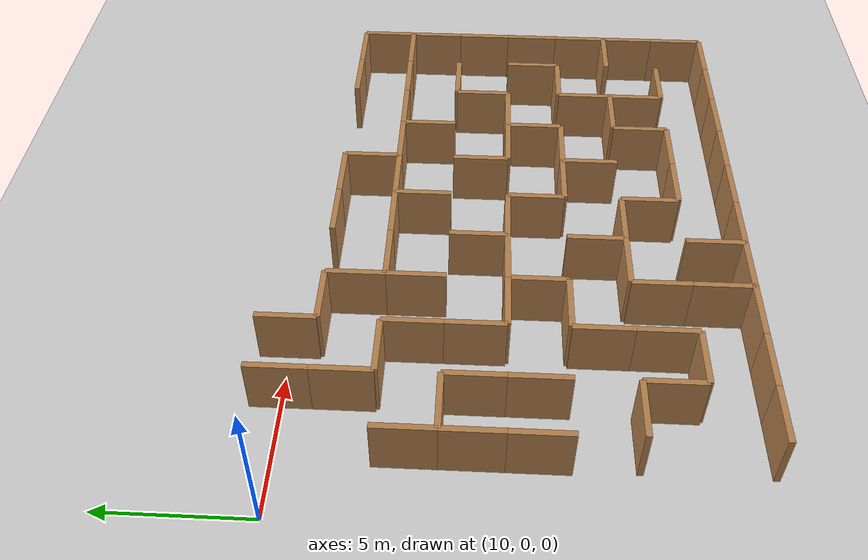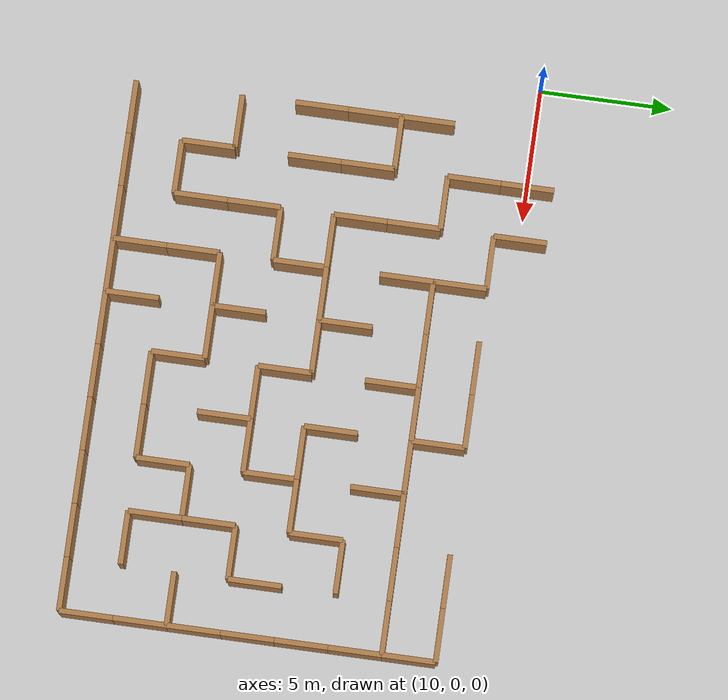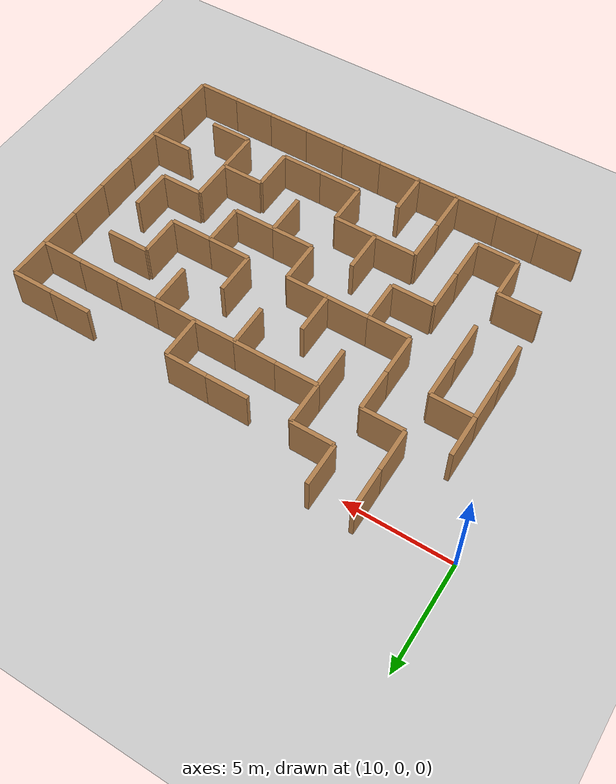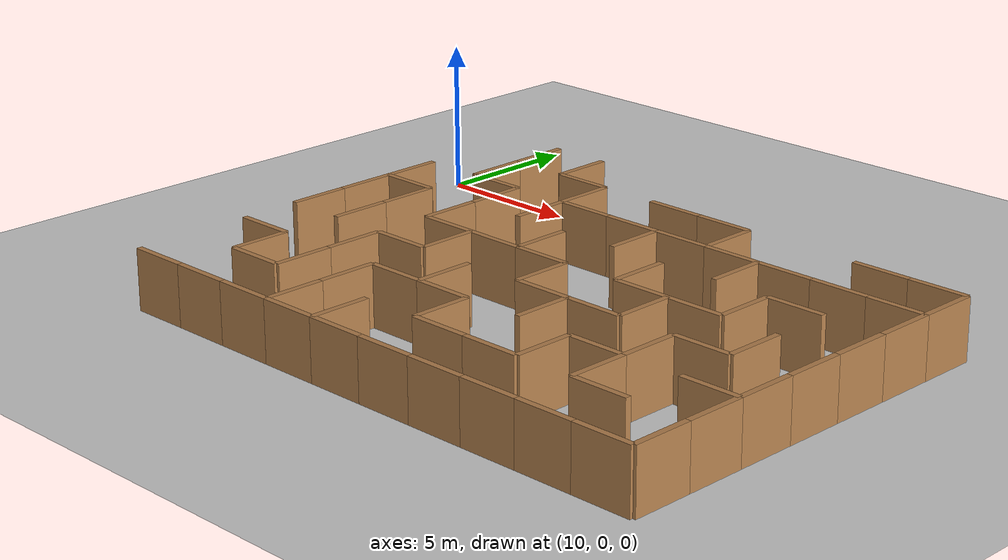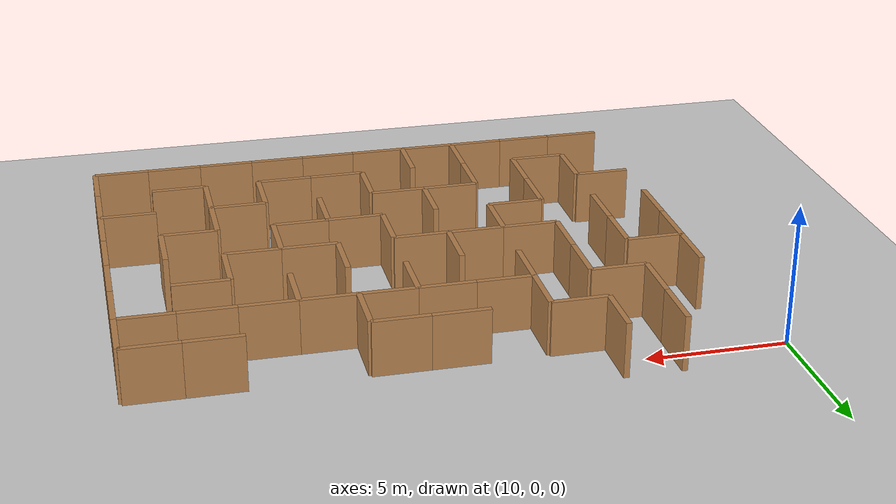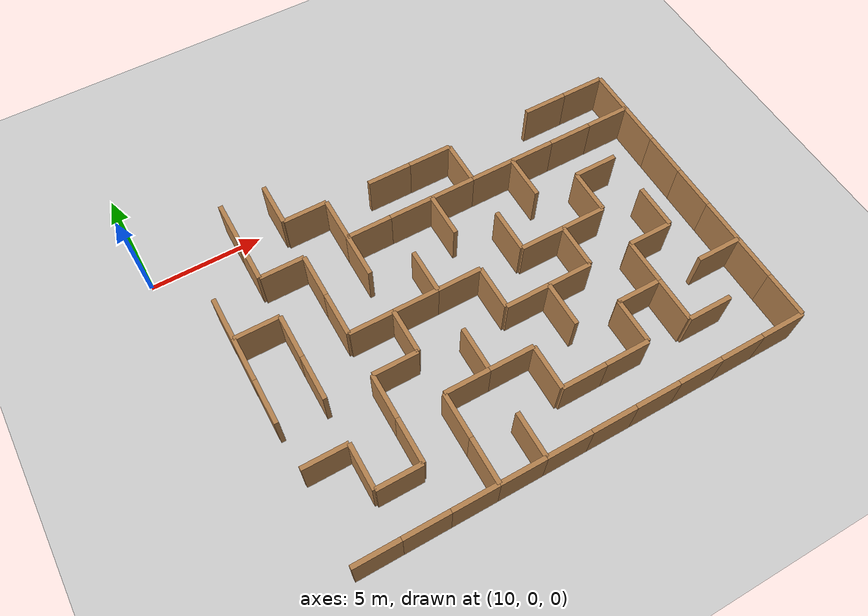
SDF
<sdf version="1.6">
 <world name="labyrinth_world">
  <include><uri>model://ground_plane</uri></include>
  <include><uri>model://sun</uri></include>
  <model name="h_wall_37">
   <static>true</static>
   <pose>12.0 -8.0 1.0 0 0 0</pose>
   <link name="link">
    <collision name="c"><geometry><box><size>0.2 2.0 2.0</size></box></geometry></collision>
    <visual name="v">
     <geometry><box><size>0.2 2.0 2.0</size></box></geometry>
     <material>
      <script><uri>file://media/materials/scripts/gazebo.material</uri><name>Gazebo/WoodFloor</name></script>
     </material>
    </visual>
   </link>
  </model>
  <model name="h_wall_38">
   <static>true</static>
   <pose>12.0 -6.0 1.0 0 0 0</pose>
   <link name="link">
    <collision name="c"><geometry><box><size>0.2 2.0 2.0</size></box></geometry></collision>
    <visual name="v">
     <geometry><box><size>0.2 2.0 2.0</size></box></geometry>
     <material>
      <script><uri>file://media/materials/scripts/gazebo.material</uri><name>Gazebo/Wood</name></script>
     </material>
    </visual>
   </link>
  </model>
  <model name="h_wall_39">
   <static>true</static>
   <pose>12.0 -4.0 1.0 0 0 0</pose>
   <link name="link">
    <collision name="c"><geometry><box><size>0.2 2.0 2.0</size></box></geometry></collision>
    <visual name="v">
     <geometry><box><size>0.2 2.0 2.0</size></box></geometry>
     <material>
      <script><uri>file://media/materials/scripts/gazebo.material</uri><name>Gazebo/WoodFloor</name></script>
     </material>
    </visual>
   </link>
  </model>
  <model name="h_wall_41">
   <static>true</static>
   <pose>14.0 -12.0 1.0 0 0 0</pose>
   <link name="link">
    <collision name="c"><geometry><box><size>0.2 2.0 2.0</size></box></geometry></collision>
    <visual name="v">
     <geometry><box><size>0.2 2.0 2.0</size></box></geometry>
     <material>
      <script><uri>file://media/materials/scripts/gazebo.material</uri><name>Gazebo/WoodFloor</name></script>
     </material>
    </visual>
   </link>
  </model>
  <model name="h_wall_42">
   <static>true</static>
   <pose>14.0 -8.0 1.0 0 0 0</pose>
   <link name="link">
    <collision name="c"><geometry><box><size>0.2 2.0 2.0</size></box></geometry></collision>
    <visual name="v">
     <geometry><box><size>0.2 2.0 2.0</size></box></geometry>
     <material>
      <script><uri>file://media/materials/scripts/gazebo.material</uri><name>Gazebo/Wood</name></script>
     </material>
    </visual>
   </link>
  </model>
  <model name="h_wall_43">
   <static>true</static>
   <pose>14.0 -6.0 1.0 0 0 0</pose>
   <link name="link">
    <collision name="c"><geometry><box><size>0.2 2.0 2.0</size></box></geometry></collision>
    <visual name="v">
     <geometry><box><size>0.2 2.0 2.0</size></box></geometry>
     <material>
      <script><uri>file://media/materials/scripts/gazebo.material</uri><name>Gazebo/WoodFloor</name></script>
     </material>
    </visual>
   </link>
  </model>
  <model name="h_wall_44">
   <static>true</static>
   <pose>14.0 -2.0 1.0 0 0 0</pose>
   <link name="link">
    <collision name="c"><geometry><box><size>0.2 2.0 2.0</size></box></geometry></collision>
    <visual name="v">
     <geometry><box><size>0.2 2.0 2.0</size></box></geometry>
     <material>
      <script><uri>file://media/materials/scripts/gazebo.material</uri><name>Gazebo/Wood</name></script>
     </material>
    </visual>
   </link>
  </model>
  <model name="h_wall_45">
   <static>true</static>
   <pose>14.0 0.0 1.0 0 0 0</pose>
   <link name="link">
    <collision name="c"><geometry><box><size>0.2 2.0 2.0</size></box></geometry></collision>
    <visual name="v">
     <geometry><box><size>0.2 2.0 2.0</size></box></geometry>
     <material>
      <script><uri>file://media/materials/scripts/gazebo.material</uri><name>Gazebo/WoodFloor</name></script>
     </material>
    </visual>
   </link>
  </model>
  <model name="h_wall_49">
   <static>true</static>
   <pose>16.0 -12.0 1.0 0 0 0</pose>
   <link name="link">
    <collision name="c"><geometry><box><size>0.2 2.0 2.0</size></box></geometry></collision>
    <visual name="v">
     <geometry><box><size>0.2 2.0 2.0</size></box></geometry>
     <material>
      <script><uri>file://media/materials/scripts/gazebo.material</uri><name>Gazebo/WoodFloor</name></script>
     </material>
    </visual>
   </link>
  </model>
  <model name="h_wall_50">
   <static>true</static>
   <pose>16.0 -10.0 1.0 0 0 0</pose>
   <link name="link">
    <collision name="c"><geometry><box><size>0.2 2.0 2.0</size></box></geometry></collision>
    <visual name="v">
     <geometry><box><size>0.2 2.0 2.0</size></box></geometry>
     <material>
      <script><uri>file://media/materials/scripts/gazebo.material</uri><name>Gazebo/Wood</name></script>
     </material>
    </visual>
   </link>
  </model>
  <model name="h_wall_51">
   <static>true</static>
   <pose>16.0 -6.0 1.0 0 0 0</pose>
   <link name="link">
    <collision name="c"><geometry><box><size>0.2 2.0 2.0</size></box></geometry></collision>
    <visual name="v">
     <geometry><box><size>0.2 2.0 2.0</size></box></geometry>
     <material>
      <script><uri>file://media/materials/scripts/gazebo.material</uri><name>Gazebo/WoodFloor</name></script>
     </material>
    </visual>
   </link>
  </model>
  <model name="h_wall_52">
   <static>true</static>
   <pose>16.0 -4.0 1.0 0 0 0</pose>
   <link name="link">
    <collision name="c"><geometry><box><size>0.2 2.0 2.0</size></box></geometry></collision>
    <visual name="v">
     <geometry><box><size>0.2 2.0 2.0</size></box></geometry>
     <material>
      <script><uri>file://media/materials/scripts/gazebo.material</uri><name>Gazebo/Wood</name></script>
     </material>
    </visual>
   </link>
  </model>
  <model name="h_wall_53">
   <static>true</static>
   <pose>16.0 0.0 1.0 0 0 0</pose>
   <link name="link">
    <collision name="c"><geometry><box><size>0.2 2.0 2.0</size></box></geometry></collision>
    <visual name="v">
     <geometry><box><size>0.2 2.0 2.0</size></box></geometry>
     <material>
      <script><uri>file://media/materials/scripts/gazebo.material</uri><name>Gazebo/WoodFloor</name></script>
     </material>
    </visual>
   </link>
  </model>
  <model name="h_wall_59">
   <static>true</static>
   <pose>18.0 -14.0 1.0 0 0 0</pose>
   <link name="link">
    <collision name="c"><geometry><box><size>0.2 2.0 2.0</size></box></geometry></collision>
    <visual name="v">
     <geometry><box><size>0.2 2.0 2.0</size></box></geometry>
     <material>
      <script><uri>file://media/materials/scripts/gazebo.material</uri><name>Gazebo/WoodFloor</name></script>
     </material>
    </visual>
   </link>
  </model>
  <model name="h_wall_60">
   <static>true</static>
   <pose>18.0 -12.0 1.0 0 0 0</pose>
   <link name="link">
    <collision name="c"><geometry><box><size>0.2 2.0 2.0</size></box></geometry></collision>
    <visual name="v">
     <geometry><box><size>0.2 2.0 2.0</size></box></geometry>
     <material>
      <script><uri>file://media/materials/scripts/gazebo.material</uri><name>Gazebo/Wood</name></script>
     </material>
    </visual>
   </link>
  </model>
  <model name="h_wall_61">
   <static>true</static>
   <pose>18.0 -8.0 1.0 0 0 0</pose>
   <link name="link">
    <collision name="c"><geometry><box><size>0.2 2.0 2.0</size></box></geometry></collision>
    <visual name="v">
     <geometry><box><size>0.2 2.0 2.0</size></box></geometry>
     <material>
      <script><uri>file://media/materials/scripts/gazebo.material</uri><name>Gazebo/WoodFloor</name></script>
     </material>
    </visual>
   </link>
  </model>
  <model name="h_wall_62">
   <static>true</static>
   <pose>18.0 -4.0 1.0 0 0 0</pose>
   <link name="link">
    <collision name="c"><geometry><box><size>0.2 2.0 2.0</size></box></geometry></collision>
    <visual name="v">
     <geometry><box><size>0.2 2.0 2.0</size></box></geometry>
     <material>
      <script><uri>file://media/materials/scripts/gazebo.material</uri><name>Gazebo/Wood</name></script>
     </material>
    </visual>
   </link>
  </model>
  <model name="h_wall_63">
   <static>true</static>
   <pose>18.0 -2.0 1.0 0 0 0</pose>
   <link name="link">
    <collision name="c"><geometry><box><size>0.2 2.0 2.0</size></box></geometry></collision>
    <visual name="v">
     <geometry><box><size>0.2 2.0 2.0</size></box></geometry>
     <material>
      <script><uri>file://media/materials/scripts/gazebo.material</uri><name>Gazebo/WoodFloor</name></script>
     </material>
    </visual>
   </link>
  </model>
  <model name="h_wall_69">
   <static>true</static>
   <pose>20.0 -14.0 1.0 0 0 0</pose>
   <link name="link">
    <collision name="c"><geometry><box><size>0.2 2.0 2.0</size></box></geometry></collision>
    <visual name="v">
     <geometry><box><size>0.2 2.0 2.0</size></box></geometry>
     <material>
      <script><uri>file://media/materials/scripts/gazebo.material</uri><name>Gazebo/WoodFloor</name></script>
     </material>
    </visual>
   </link>
  </model>
  <model name="h_wall_70">
   <static>true</static>
   <pose>20.0 -10.0 1.0 0 0 0</pose>
   <link name="link">
    <collision name="c"><geometry><box><size>0.2 2.0 2.0</size></box></geometry></collision>
    <visual name="v">
     <geometry><box><size>0.2 2.0 2.0</size></box></geometry>
     <material>
      <script><uri>file://media/materials/scripts/gazebo.material</uri><name>Gazebo/Wood</name></script>
     </material>
    </visual>
   </link>
  </model>
  <model name="h_wall_71">
   <static>true</static>
   <pose>20.0 -6.0 1.0 0 0 0</pose>
   <link name="link">
    <collision name="c"><geometry><box><size>0.2 2.0 2.0</size></box></geometry></collision>
    <visual name="v">
     <geometry><box><size>0.2 2.0 2.0</size></box></geometry>
     <material>
      <script><uri>file://media/materials/scripts/gazebo.material</uri><name>Gazebo/WoodFloor</name></script>
     </material>
    </visual>
   </link>
  </model>
  <model name="h_wall_75">
   <static>true</static>
   <pose>22.0 -12.0 1.0 0 0 0</pose>
   <link name="link">
    <collision name="c"><geometry><box><size>0.2 2.0 2.0</size></box></geometry></collision>
    <visual name="v">
     <geometry><box><size>0.2 2.0 2.0</size></box></geometry>
     <material>
      <script><uri>file://media/materials/scripts/gazebo.material</uri><name>Gazebo/WoodFloor</name></script>
     </material>
    </visual>
   </link>
  </model>
  <model name="h_wall_76">
   <static>true</static>
   <pose>22.0 -8.0 1.0 0 0 0</pose>
   <link name="link">
    <collision name="c"><geometry><box><size>0.2 2.0 2.0</size></box></geometry></collision>
    <visual name="v">
     <geometry><box><size>0.2 2.0 2.0</size></box></geometry>
     <material>
      <script><uri>file://media/materials/scripts/gazebo.material</uri><name>Gazebo/Wood</name></script>
     </material>
    </visual>
   </link>
  </model>
  <model name="h_wall_77">
   <static>true</static>
   <pose>22.0 -4.0 1.0 0 0 0</pose>
   <link name="link">
    <collision name="c"><geometry><box><size>0.2 2.0 2.0</size></box></geometry></collision>
    <visual name="v">
     <geometry><box><size>0.2 2.0 2.0</size></box></geometry>
     <material>
      <script><uri>file://media/materials/scripts/gazebo.material</uri><name>Gazebo/WoodFloor</name></script>
     </material>
    </visual>
   </link>
  </model>
  <model name="h_wall_78">
   <static>true</static>
   <pose>24.0 -10.0 1.0 0 0 0</pose>
   <link name="link">
    <collision name="c"><geometry><box><size>0.2 2.0 2.0</size></box></geometry></collision>
    <visual name="v">
     <geometry><box><size>0.2 2.0 2.0</size></box></geometry>
     <material>
      <script><uri>file://media/materials/scripts/gazebo.material</uri><name>Gazebo/Wood</name></script>
     </material>
    </visual>
   </link>
  </model>
  <model name="h_wall_79">
   <static>true</static>
   <pose>24.0 -6.0 1.0 0 0 0</pose>
   <link name="link">
    <collision name="c"><geometry><box><size>0.2 2.0 2.0</size></box></geometry></collision>
    <visual name="v">
     <geometry><box><size>0.2 2.0 2.0</size></box></geometry>
     <material>
      <script><uri>file://media/materials/scripts/gazebo.material</uri><name>Gazebo/WoodFloor</name></script>
     </material>
    </visual>
   </link>
  </model>
  <model name="h_wall_80">
   <static>true</static>
   <pose>24.0 -2.0 1.0 0 0 0</pose>
   <link name="link">
    <collision name="c"><geometry><box><size>0.2 2.0 2.0</size></box></geometry></collision>
    <visual name="v">
     <geometry><box><size>0.2 2.0 2.0</size></box></geometry>
     <material>
      <script><uri>file://media/materials/scripts/gazebo.material</uri><name>Gazebo/Wood</name></script>
     </material>
    </visual>
   </link>
  </model>
  <model name="h_wall_85">
   <static>true</static>
   <pose>26.0 -12.0 1.0 0 0 0</pose>
   <link name="link">
    <collision name="c"><geometry><box><size>0.2 2.0 2.0</size></box></geometry></collision>
    <visual name="v">
     <geometry><box><size>0.2 2.0 2.0</size></box></geometry>
     <material>
      <script><uri>file://media/materials/scripts/gazebo.material</uri><name>Gazebo/WoodFloor</name></script>
     </material>
    </visual>
   </link>
  </model>
  <model name="h_wall_86">
   <static>true</static>
   <pose>26.0 -8.0 1.0 0 0 0</pose>
   <link name="link">
    <collision name="c"><geometry><box><size>0.2 2.0 2.0</size></box></geometry></collision>
    <visual name="v">
     <geometry><box><size>0.2 2.0 2.0</size></box></geometry>
     <material>
      <script><uri>file://media/materials/scripts/gazebo.material</uri><name>Gazebo/Wood</name></script>
     </material>
    </visual>
   </link>
  </model>
  <model name="h_wall_87">
   <static>true</static>
   <pose>26.0 -4.0 1.0 0 0 0</pose>
   <link name="link">
    <collision name="c"><geometry><box><size>0.2 2.0 2.0</size></box></geometry></collision>
    <visual name="v">
     <geometry><box><size>0.2 2.0 2.0</size></box></geometry>
     <material>
      <script><uri>file://media/materials/scripts/gazebo.material</uri><name>Gazebo/WoodFloor</name></script>
     </material>
    </visual>
   </link>
  </model>
  <model name="h_wall_95">
   <static>true</static>
   <pose>28.0 -12.0 1.0 0 0 0</pose>
   <link name="link">
    <collision name="c"><geometry><box><size>0.2 2.0 2.0</size></box></geometry></collision>
    <visual name="v">
     <geometry><box><size>0.2 2.0 2.0</size></box></geometry>
     <material>
      <script><uri>file://media/materials/scripts/gazebo.material</uri><name>Gazebo/WoodFloor</name></script>
     </material>
    </visual>
   </link>
  </model>
  <model name="h_wall_96">
   <static>true</static>
   <pose>28.0 -10.0 1.0 0 0 0</pose>
   <link name="link">
    <collision name="c"><geometry><box><size>0.2 2.0 2.0</size></box></geometry></collision>
    <visual name="v">
     <geometry><box><size>0.2 2.0 2.0</size></box></geometry>
     <material>
      <script><uri>file://media/materials/scripts/gazebo.material</uri><name>Gazebo/Wood</name></script>
     </material>
    </visual>
   </link>
  </model>
  <model name="h_wall_97">
   <static>true</static>
   <pose>28.0 -6.0 1.0 0 0 0</pose>
   <link name="link">
    <collision name="c"><geometry><box><size>0.2 2.0 2.0</size></box></geometry></collision>
    <visual name="v">
     <geometry><box><size>0.2 2.0 2.0</size></box></geometry>
     <material>
      <script><uri>file://media/materials/scripts/gazebo.material</uri><name>Gazebo/WoodFloor</name></script>
     </material>
    </visual>
   </link>
  </model>
  <model name="h_wall_102">
   <static>true</static>
   <pose>30.0 -8.0 1.0 0 0 0</pose>
   <link name="link">
    <collision name="c"><geometry><box><size>0.2 2.0 2.0</size></box></geometry></collision>
    <visual name="v">
     <geometry><box><size>0.2 2.0 2.0</size></box></geometry>
     <material>
      <script><uri>file://media/materials/scripts/gazebo.material</uri><name>Gazebo/Wood</name></script>
     </material>
    </visual>
   </link>
  </model>
  <model name="h_wall_105">
   <static>true</static>
   <pose>32.0 -14.0 1.0 0 0 0</pose>
   <link name="link">
    <collision name="c"><geometry><box><size>0.2 2.0 2.0</size></box></geometry></collision>
    <visual name="v">
     <geometry><box><size>0.2 2.0 2.0</size></box></geometry>
     <material>
      <script><uri>file://media/materials/scripts/gazebo.material</uri><name>Gazebo/WoodFloor</name></script>
     </material>
    </visual>
   </link>
  </model>
  <model name="h_wall_106">
   <static>true</static>
   <pose>32.0 -12.0 1.0 0 0 0</pose>
   <link name="link">
    <collision name="c"><geometry><box><size>0.2 2.0 2.0</size></box></geometry></collision>
    <visual name="v">
     <geometry><box><size>0.2 2.0 2.0</size></box></geometry>
     <material>
      <script><uri>file://media/materials/scripts/gazebo.material</uri><name>Gazebo/Wood</name></script>
     </material>
    </visual>
   </link>
  </model>
  <model name="h_wall_107">
   <static>true</static>
   <pose>32.0 -10.0 1.0 0 0 0</pose>
   <link name="link">
    <collision name="c"><geometry><box><size>0.2 2.0 2.0</size></box></geometry></collision>
    <visual name="v">
     <geometry><box><size>0.2 2.0 2.0</size></box></geometry>
     <material>
      <script><uri>file://media/materials/scripts/gazebo.material</uri><name>Gazebo/WoodFloor</name></script>
     </material>
    </visual>
   </link>
  </model>
  <model name="h_wall_108">
   <static>true</static>
   <pose>32.0 -8.0 1.0 0 0 0</pose>
   <link name="link">
    <collision name="c"><geometry><box><size>0.2 2.0 2.0</size></box></geometry></collision>
    <visual name="v">
     <geometry><box><size>0.2 2.0 2.0</size></box></geometry>
     <material>
      <script><uri>file://media/materials/scripts/gazebo.material</uri><name>Gazebo/Wood</name></script>
     </material>
    </visual>
   </link>
  </model>
  <model name="h_wall_109">
   <static>true</static>
   <pose>32.0 -6.0 1.0 0 0 0</pose>
   <link name="link">
    <collision name="c"><geometry><box><size>0.2 2.0 2.0</size></box></geometry></collision>
    <visual name="v">
     <geometry><box><size>0.2 2.0 2.0</size></box></geometry>
     <material>
      <script><uri>file://media/materials/scripts/gazebo.material</uri><name>Gazebo/WoodFloor</name></script>
     </material>
    </visual>
   </link>
  </model>
  <model name="h_wall_110">
   <static>true</static>
   <pose>32.0 -4.0 1.0 0 0 0</pose>
   <link name="link">
    <collision name="c"><geometry><box><size>0.2 2.0 2.0</size></box></geometry></collision>
    <visual name="v">
     <geometry><box><size>0.2 2.0 2.0</size></box></geometry>
     <material>
      <script><uri>file://media/materials/scripts/gazebo.material</uri><name>Gazebo/Wood</name></script>
     </material>
    </visual>
   </link>
  </model>
  <model name="h_wall_111">
   <static>true</static>
   <pose>32.0 -2.0 1.0 0 0 0</pose>
   <link name="link">
    <collision name="c"><geometry><box><size>0.2 2.0 2.0</size></box></geometry></collision>
    <visual name="v">
     <geometry><box><size>0.2 2.0 2.0</size></box></geometry>
     <material>
      <script><uri>file://media/materials/scripts/gazebo.material</uri><name>Gazebo/WoodFloor</name></script>
     </material>
    </visual>
   </link>
  </model>
  <model name="v_wall_168">
   <static>true</static>
   <pose>13.0 -15.0 1.0 0 0 0</pose>
   <link name="link">
    <collision name="c"><geometry><box><size>2.0 0.2 2.0</size></box></geometry></collision>
    <visual name="v">
     <geometry><box><size>2.0 0.2 2.0</size></box></geometry>
     <material>
      <script><uri>file://media/materials/scripts/gazebo.material</uri><name>Gazebo/Wood</name></script>
     </material>
    </visual>
   </link>
  </model>
  <model name="v_wall_169">
   <static>true</static>
   <pose>13.0 -11.0 1.0 0 0 0</pose>
   <link name="link">
    <collision name="c"><geometry><box><size>2.0 0.2 2.0</size></box></geometry></collision>
    <visual name="v">
     <geometry><box><size>2.0 0.2 2.0</size></box></geometry>
     <material>
      <script><uri>file://media/materials/scripts/gazebo.material</uri><name>Gazebo/WoodFloor</name></script>
     </material>
    </visual>
   </link>
  </model>
  <model name="v_wall_170">
   <static>true</static>
   <pose>13.0 -5.0 1.0 0 0 0</pose>
   <link name="link">
    <collision name="c"><geometry><box><size>2.0 0.2 2.0</size></box></geometry></collision>
    <visual name="v">
     <geometry><box><size>2.0 0.2 2.0</size></box></geometry>
     <material>
      <script><uri>file://media/materials/scripts/gazebo.material</uri><name>Gazebo/Wood</name></script>
     </material>
    </visual>
   </link>
  </model>
  <model name="v_wall_177">
   <static>true</static>
   <pose>15.0 -15.0 1.0 0 0 0</pose>
   <link name="link">
    <collision name="c"><geometry><box><size>2.0 0.2 2.0</size></box></geometry></collision>
    <visual name="v">
     <geometry><box><size>2.0 0.2 2.0</size></box></geometry>
     <material>
      <script><uri>file://media/materials/scripts/gazebo.material</uri><name>Gazebo/WoodFloor</name></script>
     </material>
    </visual>
   </link>
  </model>
  <model name="v_wall_178">
   <static>true</static>
   <pose>15.0 -13.0 1.0 0 0 0</pose>
   <link name="link">
    <collision name="c"><geometry><box><size>2.0 0.2 2.0</size></box></geometry></collision>
    <visual name="v">
     <geometry><box><size>2.0 0.2 2.0</size></box></geometry>
     <material>
      <script><uri>file://media/materials/scripts/gazebo.material</uri><name>Gazebo/Wood</name></script>
     </material>
    </visual>
   </link>
  </model>
  <model name="v_wall_179">
   <static>true</static>
   <pose>15.0 -3.0 1.0 0 0 0</pose>
   <link name="link">
    <collision name="c"><geometry><box><size>2.0 0.2 2.0</size></box></geometry></collision>
    <visual name="v">
     <geometry><box><size>2.0 0.2 2.0</size></box></geometry>
     <material>
      <script><uri>file://media/materials/scripts/gazebo.material</uri><name>Gazebo/WoodFloor</name></script>
     </material>
    </visual>
   </link>
  </model>
  <model name="v_wall_184">
   <static>true</static>
   <pose>17.0 -15.0 1.0 0 0 0</pose>
   <link name="link">
    <collision name="c"><geometry><box><size>2.0 0.2 2.0</size></box></geometry></collision>
    <visual name="v">
     <geometry><box><size>2.0 0.2 2.0</size></box></geometry>
     <material>
      <script><uri>file://media/materials/scripts/gazebo.material</uri><name>Gazebo/Wood</name></script>
     </material>
    </visual>
   </link>
  </model>
  <model name="v_wall_185">
   <static>true</static>
   <pose>17.0 -9.0 1.0 0 0 0</pose>
   <link name="link">
    <collision name="c"><geometry><box><size>2.0 0.2 2.0</size></box></geometry></collision>
    <visual name="v">
     <geometry><box><size>2.0 0.2 2.0</size></box></geometry>
     <material>
      <script><uri>file://media/materials/scripts/gazebo.material</uri><name>Gazebo/WoodFloor</name></script>
     </material>
    </visual>
   </link>
  </model>
  <model name="v_wall_186">
   <static>true</static>
   <pose>17.0 -7.0 1.0 0 0 0</pose>
   <link name="link">
    <collision name="c"><geometry><box><size>2.0 0.2 2.0</size></box></geometry></collision>
    <visual name="v">
     <geometry><box><size>2.0 0.2 2.0</size></box></geometry>
     <material>
      <script><uri>file://media/materials/scripts/gazebo.material</uri><name>Gazebo/Wood</name></script>
     </material>
    </visual>
   </link>
  </model>
  <model name="v_wall_187">
   <static>true</static>
   <pose>17.0 -1.0 1.0 0 0 0</pose>
   <link name="link">
    <collision name="c"><geometry><box><size>2.0 0.2 2.0</size></box></geometry></collision>
    <visual name="v">
     <geometry><box><size>2.0 0.2 2.0</size></box></geometry>
     <material>
      <script><uri>file://media/materials/scripts/gazebo.material</uri><name>Gazebo/WoodFloor</name></script>
     </material>
    </visual>
   </link>
  </model>
  <model name="v_wall_191">
   <static>true</static>
   <pose>19.0 -15.0 1.0 0 0 0</pose>
   <link name="link">
    <collision name="c"><geometry><box><size>2.0 0.2 2.0</size></box></geometry></collision>
    <visual name="v">
     <geometry><box><size>2.0 0.2 2.0</size></box></geometry>
     <material>
      <script><uri>file://media/materials/scripts/gazebo.material</uri><name>Gazebo/WoodFloor</name></script>
     </material>
    </visual>
   </link>
  </model>
  <model name="v_wall_192">
   <static>true</static>
   <pose>19.0 -11.0 1.0 0 0 0</pose>
   <link name="link">
    <collision name="c"><geometry><box><size>2.0 0.2 2.0</size></box></geometry></collision>
    <visual name="v">
     <geometry><box><size>2.0 0.2 2.0</size></box></geometry>
     <material>
      <script><uri>file://media/materials/scripts/gazebo.material</uri><name>Gazebo/Wood</name></script>
     </material>
    </visual>
   </link>
  </model>
  <model name="v_wall_193">
   <static>true</static>
   <pose>19.0 -7.0 1.0 0 0 0</pose>
   <link name="link">
    <collision name="c"><geometry><box><size>2.0 0.2 2.0</size></box></geometry></collision>
    <visual name="v">
     <geometry><box><size>2.0 0.2 2.0</size></box></geometry>
     <material>
      <script><uri>file://media/materials/scripts/gazebo.material</uri><name>Gazebo/WoodFloor</name></script>
     </material>
    </visual>
   </link>
  </model>
  <model name="v_wall_194">
   <static>true</static>
   <pose>19.0 -3.0 1.0 0 0 0</pose>
   <link name="link">
    <collision name="c"><geometry><box><size>2.0 0.2 2.0</size></box></geometry></collision>
    <visual name="v">
     <geometry><box><size>2.0 0.2 2.0</size></box></geometry>
     <material>
      <script><uri>file://media/materials/scripts/gazebo.material</uri><name>Gazebo/Wood</name></script>
     </material>
    </visual>
   </link>
  </model>
  <model name="v_wall_199">
   <static>true</static>
   <pose>21.0 -15.0 1.0 0 0 0</pose>
   <link name="link">
    <collision name="c"><geometry><box><size>2.0 0.2 2.0</size></box></geometry></collision>
    <visual name="v">
     <geometry><box><size>2.0 0.2 2.0</size></box></geometry>
     <material>
      <script><uri>file://media/materials/scripts/gazebo.material</uri><name>Gazebo/WoodFloor</name></script>
     </material>
    </visual>
   </link>
  </model>
  <model name="v_wall_200">
   <static>true</static>
   <pose>21.0 -11.0 1.0 0 0 0</pose>
   <link name="link">
    <collision name="c"><geometry><box><size>2.0 0.2 2.0</size></box></geometry></collision>
    <visual name="v">
     <geometry><box><size>2.0 0.2 2.0</size></box></geometry>
     <material>
      <script><uri>file://media/materials/scripts/gazebo.material</uri><name>Gazebo/Wood</name></script>
     </material>
    </visual>
   </link>
  </model>
  <model name="v_wall_201">
   <static>true</static>
   <pose>21.0 -7.0 1.0 0 0 0</pose>
   <link name="link">
    <collision name="c"><geometry><box><size>2.0 0.2 2.0</size></box></geometry></collision>
    <visual name="v">
     <geometry><box><size>2.0 0.2 2.0</size></box></geometry>
     <material>
      <script><uri>file://media/materials/scripts/gazebo.material</uri><name>Gazebo/WoodFloor</name></script>
     </material>
    </visual>
   </link>
  </model>
  <model name="v_wall_202">
   <static>true</static>
   <pose>21.0 -3.0 1.0 0 0 0</pose>
   <link name="link">
    <collision name="c"><geometry><box><size>2.0 0.2 2.0</size></box></geometry></collision>
    <visual name="v">
     <geometry><box><size>2.0 0.2 2.0</size></box></geometry>
     <material>
      <script><uri>file://media/materials/scripts/gazebo.material</uri><name>Gazebo/Wood</name></script>
     </material>
    </visual>
   </link>
  </model>
  <model name="v_wall_203">
   <static>true</static>
   <pose>21.0 -1.0 1.0 0 0 0</pose>
   <link name="link">
    <collision name="c"><geometry><box><size>2.0 0.2 2.0</size></box></geometry></collision>
    <visual name="v">
     <geometry><box><size>2.0 0.2 2.0</size></box></geometry>
     <material>
      <script><uri>file://media/materials/scripts/gazebo.material</uri><name>Gazebo/WoodFloor</name></script>
     </material>
    </visual>
   </link>
  </model>
  <model name="v_wall_211">
   <static>true</static>
   <pose>23.0 -15.0 1.0 0 0 0</pose>
   <link name="link">
    <collision name="c"><geometry><box><size>2.0 0.2 2.0</size></box></geometry></collision>
    <visual name="v">
     <geometry><box><size>2.0 0.2 2.0</size></box></geometry>
     <material>
      <script><uri>file://media/materials/scripts/gazebo.material</uri><name>Gazebo/WoodFloor</name></script>
     </material>
    </visual>
   </link>
  </model>
  <model name="v_wall_212">
   <static>true</static>
   <pose>23.0 -13.0 1.0 0 0 0</pose>
   <link name="link">
    <collision name="c"><geometry><box><size>2.0 0.2 2.0</size></box></geometry></collision>
    <visual name="v">
     <geometry><box><size>2.0 0.2 2.0</size></box></geometry>
     <material>
      <script><uri>file://media/materials/scripts/gazebo.material</uri><name>Gazebo/Wood</name></script>
     </material>
    </visual>
   </link>
  </model>
  <model name="v_wall_213">
   <static>true</static>
   <pose>23.0 -9.0 1.0 0 0 0</pose>
   <link name="link">
    <collision name="c"><geometry><box><size>2.0 0.2 2.0</size></box></geometry></collision>
    <visual name="v">
     <geometry><box><size>2.0 0.2 2.0</size></box></geometry>
     <material>
      <script><uri>file://media/materials/scripts/gazebo.material</uri><name>Gazebo/WoodFloor</name></script>
     </material>
    </visual>
   </link>
  </model>
  <model name="v_wall_214">
   <static>true</static>
   <pose>23.0 -3.0 1.0 0 0 0</pose>
   <link name="link">
    <collision name="c"><geometry><box><size>2.0 0.2 2.0</size></box></geometry></collision>
    <visual name="v">
     <geometry><box><size>2.0 0.2 2.0</size></box></geometry>
     <material>
      <script><uri>file://media/materials/scripts/gazebo.material</uri><name>Gazebo/Wood</name></script>
     </material>
    </visual>
   </link>
  </model>
  <model name="v_wall_215">
   <static>true</static>
   <pose>23.0 -1.0 1.0 0 0 0</pose>
   <link name="link">
    <collision name="c"><geometry><box><size>2.0 0.2 2.0</size></box></geometry></collision>
    <visual name="v">
     <geometry><box><size>2.0 0.2 2.0</size></box></geometry>
     <material>
      <script><uri>file://media/materials/scripts/gazebo.material</uri><name>Gazebo/WoodFloor</name></script>
     </material>
    </visual>
   </link>
  </model>
  <model name="v_wall_221">
   <static>true</static>
   <pose>25.0 -15.0 1.0 0 0 0</pose>
   <link name="link">
    <collision name="c"><geometry><box><size>2.0 0.2 2.0</size></box></geometry></collision>
    <visual name="v">
     <geometry><box><size>2.0 0.2 2.0</size></box></geometry>
     <material>
      <script><uri>file://media/materials/scripts/gazebo.material</uri><name>Gazebo/WoodFloor</name></script>
     </material>
    </visual>
   </link>
  </model>
  <model name="v_wall_222">
   <static>true</static>
   <pose>25.0 -13.0 1.0 0 0 0</pose>
   <link name="link">
    <collision name="c"><geometry><box><size>2.0 0.2 2.0</size></box></geometry></collision>
    <visual name="v">
     <geometry><box><size>2.0 0.2 2.0</size></box></geometry>
     <material>
      <script><uri>file://media/materials/scripts/gazebo.material</uri><name>Gazebo/Wood</name></script>
     </material>
    </visual>
   </link>
  </model>
  <model name="v_wall_223">
   <static>true</static>
   <pose>25.0 -9.0 1.0 0 0 0</pose>
   <link name="link">
    <collision name="c"><geometry><box><size>2.0 0.2 2.0</size></box></geometry></collision>
    <visual name="v">
     <geometry><box><size>2.0 0.2 2.0</size></box></geometry>
     <material>
      <script><uri>file://media/materials/scripts/gazebo.material</uri><name>Gazebo/WoodFloor</name></script>
     </material>
    </visual>
   </link>
  </model>
  <model name="v_wall_224">
   <static>true</static>
   <pose>25.0 -7.0 1.0 0 0 0</pose>
   <link name="link">
    <collision name="c"><geometry><box><size>2.0 0.2 2.0</size></box></geometry></collision>
    <visual name="v">
     <geometry><box><size>2.0 0.2 2.0</size></box></geometry>
     <material>
      <script><uri>file://media/materials/scripts/gazebo.material</uri><name>Gazebo/Wood</name></script>
     </material>
    </visual>
   </link>
  </model>
  <model name="v_wall_225">
   <static>true</static>
   <pose>25.0 -3.0 1.0 0 0 0</pose>
   <link name="link">
    <collision name="c"><geometry><box><size>2.0 0.2 2.0</size></box></geometry></collision>
    <visual name="v">
     <geometry><box><size>2.0 0.2 2.0</size></box></geometry>
     <material>
      <script><uri>file://media/materials/scripts/gazebo.material</uri><name>Gazebo/WoodFloor</name></script>
     </material>
    </visual>
   </link>
  </model>
  <model name="v_wall_229">
   <static>true</static>
   <pose>27.0 -15.0 1.0 0 0 0</pose>
   <link name="link">
    <collision name="c"><geometry><box><size>2.0 0.2 2.0</size></box></geometry></collision>
    <visual name="v">
     <geometry><box><size>2.0 0.2 2.0</size></box></geometry>
     <material>
      <script><uri>file://media/materials/scripts/gazebo.material</uri><name>Gazebo/WoodFloor</name></script>
     </material>
    </visual>
   </link>
  </model>
  <model name="v_wall_230">
   <static>true</static>
   <pose>27.0 -11.0 1.0 0 0 0</pose>
   <link name="link">
    <collision name="c"><geometry><box><size>2.0 0.2 2.0</size></box></geometry></collision>
    <visual name="v">
     <geometry><box><size>2.0 0.2 2.0</size></box></geometry>
     <material>
      <script><uri>file://media/materials/scripts/gazebo.material</uri><name>Gazebo/Wood</name></script>
     </material>
    </visual>
   </link>
  </model>
  <model name="v_wall_231">
   <static>true</static>
   <pose>27.0 -7.0 1.0 0 0 0</pose>
   <link name="link">
    <collision name="c"><geometry><box><size>2.0 0.2 2.0</size></box></geometry></collision>
    <visual name="v">
     <geometry><box><size>2.0 0.2 2.0</size></box></geometry>
     <material>
      <script><uri>file://media/materials/scripts/gazebo.material</uri><name>Gazebo/WoodFloor</name></script>
     </material>
    </visual>
   </link>
  </model>
  <model name="v_wall_232">
   <static>true</static>
   <pose>27.0 -3.0 1.0 0 0 0</pose>
   <link name="link">
    <collision name="c"><geometry><box><size>2.0 0.2 2.0</size></box></geometry></collision>
    <visual name="v">
     <geometry><box><size>2.0 0.2 2.0</size></box></geometry>
     <material>
      <script><uri>file://media/materials/scripts/gazebo.material</uri><name>Gazebo/Wood</name></script>
     </material>
    </visual>
   </link>
  </model>
  <model name="v_wall_236">
   <static>true</static>
   <pose>29.0 -15.0 1.0 0 0 0</pose>
   <link name="link">
    <collision name="c"><geometry><box><size>2.0 0.2 2.0</size></box></geometry></collision>
    <visual name="v">
     <geometry><box><size>2.0 0.2 2.0</size></box></geometry>
     <material>
      <script><uri>file://media/materials/scripts/gazebo.material</uri><name>Gazebo/Wood</name></script>
     </material>
    </visual>
   </link>
  </model>
  <model name="v_wall_237">
   <static>true</static>
   <pose>29.0 -13.0 1.0 0 0 0</pose>
   <link name="link">
    <collision name="c"><geometry><box><size>2.0 0.2 2.0</size></box></geometry></collision>
    <visual name="v">
     <geometry><box><size>2.0 0.2 2.0</size></box></geometry>
     <material>
      <script><uri>file://media/materials/scripts/gazebo.material</uri><name>Gazebo/WoodFloor</name></script>
     </material>
    </visual>
   </link>
  </model>
  <model name="v_wall_238">
   <static>true</static>
   <pose>29.0 -9.0 1.0 0 0 0</pose>
   <link name="link">
    <collision name="c"><geometry><box><size>2.0 0.2 2.0</size></box></geometry></collision>
    <visual name="v">
     <geometry><box><size>2.0 0.2 2.0</size></box></geometry>
     <material>
      <script><uri>file://media/materials/scripts/gazebo.material</uri><name>Gazebo/Wood</name></script>
     </material>
    </visual>
   </link>
  </model>
  <model name="v_wall_239">
   <static>true</static>
   <pose>29.0 -5.0 1.0 0 0 0</pose>
   <link name="link">
    <collision name="c"><geometry><box><size>2.0 0.2 2.0</size></box></geometry></collision>
    <visual name="v">
     <geometry><box><size>2.0 0.2 2.0</size></box></geometry>
     <material>
      <script><uri>file://media/materials/scripts/gazebo.material</uri><name>Gazebo/WoodFloor</name></script>
     </material>
    </visual>
   </link>
  </model>
  <model name="v_wall_240">
   <static>true</static>
   <pose>29.0 -3.0 1.0 0 0 0</pose>
   <link name="link">
    <collision name="c"><geometry><box><size>2.0 0.2 2.0</size></box></geometry></collision>
    <visual name="v">
     <geometry><box><size>2.0 0.2 2.0</size></box></geometry>
     <material>
      <script><uri>file://media/materials/scripts/gazebo.material</uri><name>Gazebo/Wood</name></script>
     </material>
    </visual>
   </link>
  </model>
  <model name="v_wall_241">
   <static>true</static>
   <pose>29.0 -1.0 1.0 0 0 0</pose>
   <link name="link">
    <collision name="c"><geometry><box><size>2.0 0.2 2.0</size></box></geometry></collision>
    <visual name="v">
     <geometry><box><size>2.0 0.2 2.0</size></box></geometry>
     <material>
      <script><uri>file://media/materials/scripts/gazebo.material</uri><name>Gazebo/WoodFloor</name></script>
     </material>
    </visual>
   </link>
  </model>
  <model name="v_wall_247">
   <static>true</static>
   <pose>31.0 -15.0 1.0 0 0 0</pose>
   <link name="link">
    <collision name="c"><geometry><box><size>2.0 0.2 2.0</size></box></geometry></collision>
    <visual name="v">
     <geometry><box><size>2.0 0.2 2.0</size></box></geometry>
     <material>
      <script><uri>file://media/materials/scripts/gazebo.material</uri><name>Gazebo/WoodFloor</name></script>
     </material>
    </visual>
   </link>
  </model>
  <model name="v_wall_248">
   <static>true</static>
   <pose>31.0 -11.0 1.0 0 0 0</pose>
   <link name="link">
    <collision name="c"><geometry><box><size>2.0 0.2 2.0</size></box></geometry></collision>
    <visual name="v">
     <geometry><box><size>2.0 0.2 2.0</size></box></geometry>
     <material>
      <script><uri>file://media/materials/scripts/gazebo.material</uri><name>Gazebo/Wood</name></script>
     </material>
    </visual>
   </link>
  </model>
  <model name="v_wall_249">
   <static>true</static>
   <pose>31.0 -3.0 1.0 0 0 0</pose>
   <link name="link">
    <collision name="c"><geometry><box><size>2.0 0.2 2.0</size></box></geometry></collision>
    <visual name="v">
     <geometry><box><size>2.0 0.2 2.0</size></box></geometry>
     <material>
      <script><uri>file://media/materials/scripts/gazebo.material</uri><name>Gazebo/WoodFloor</name></script>
     </material>
    </visual>
   </link>
  </model>
  <model name="v_wall_250">
   <static>true</static>
   <pose>31.0 -1.0 1.0 0 0 0</pose>
   <link name="link">
    <collision name="c"><geometry><box><size>2.0 0.2 2.0</size></box></geometry></collision>
    <visual name="v">
     <geometry><box><size>2.0 0.2 2.0</size></box></geometry>
     <material>
      <script><uri>file://media/materials/scripts/gazebo.material</uri><name>Gazebo/Wood</name></script>
     </material>
    </visual>
   </link>
  </model>
 </world>
</sdf>
